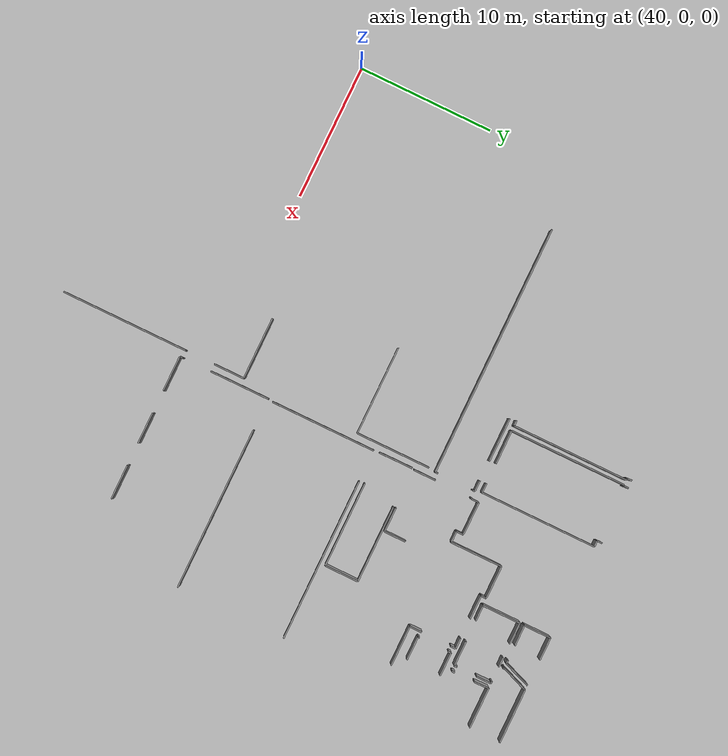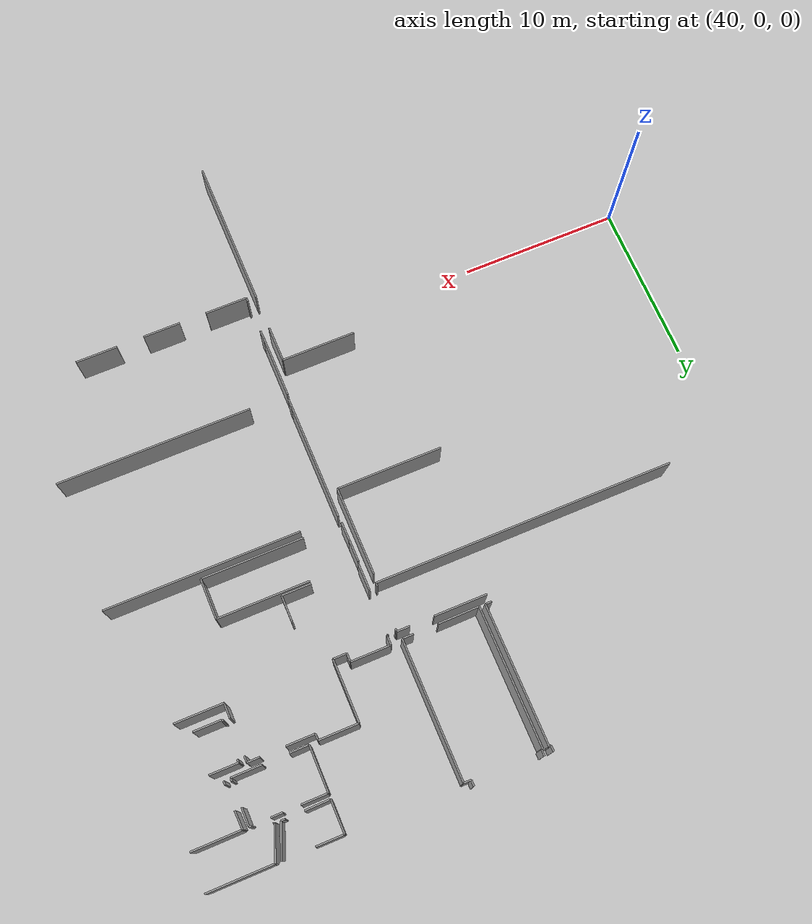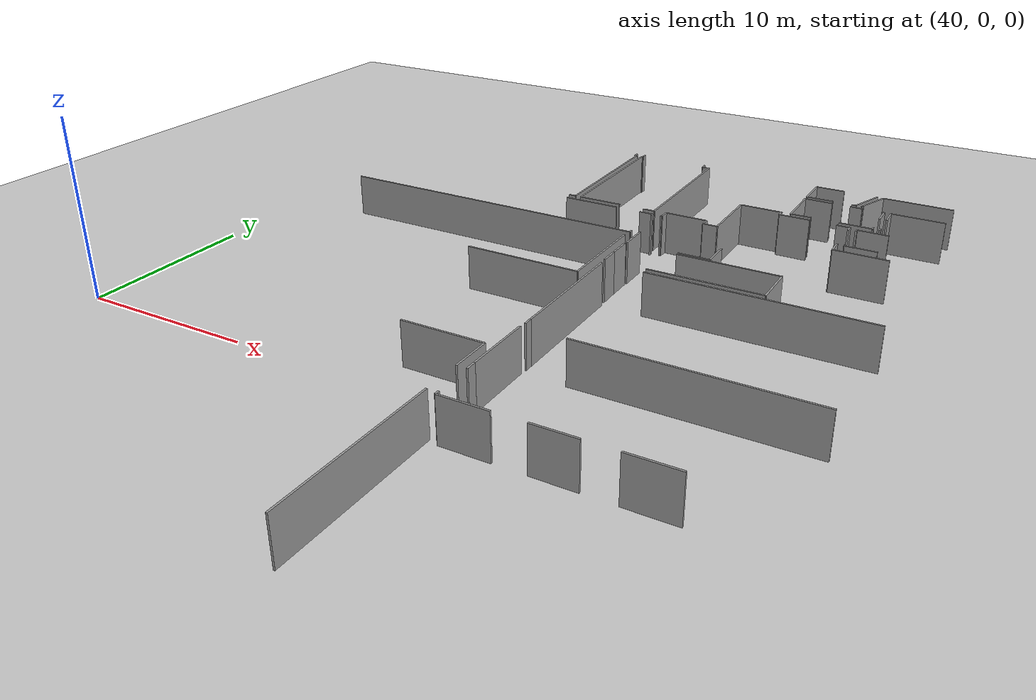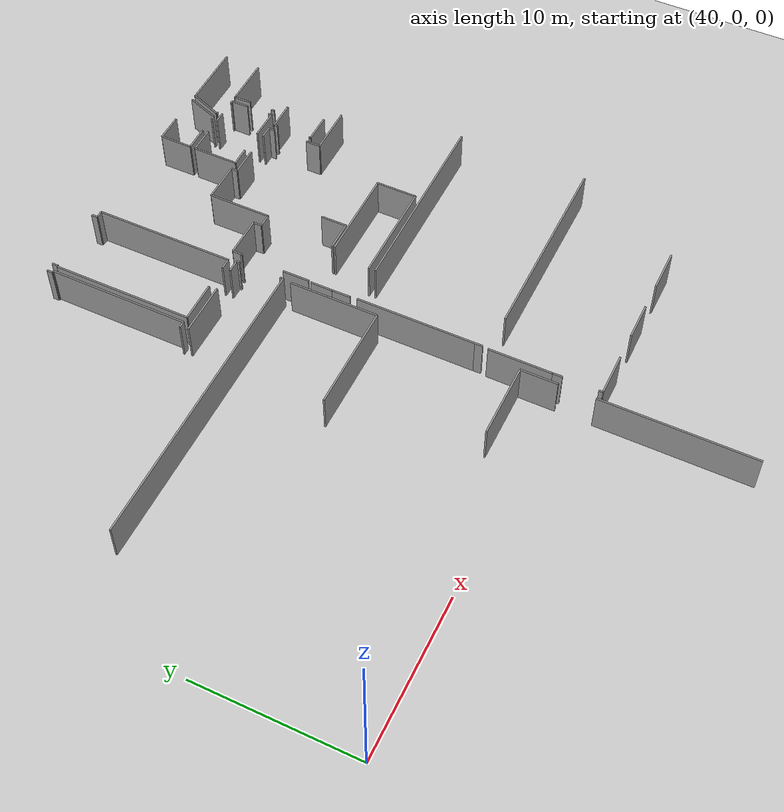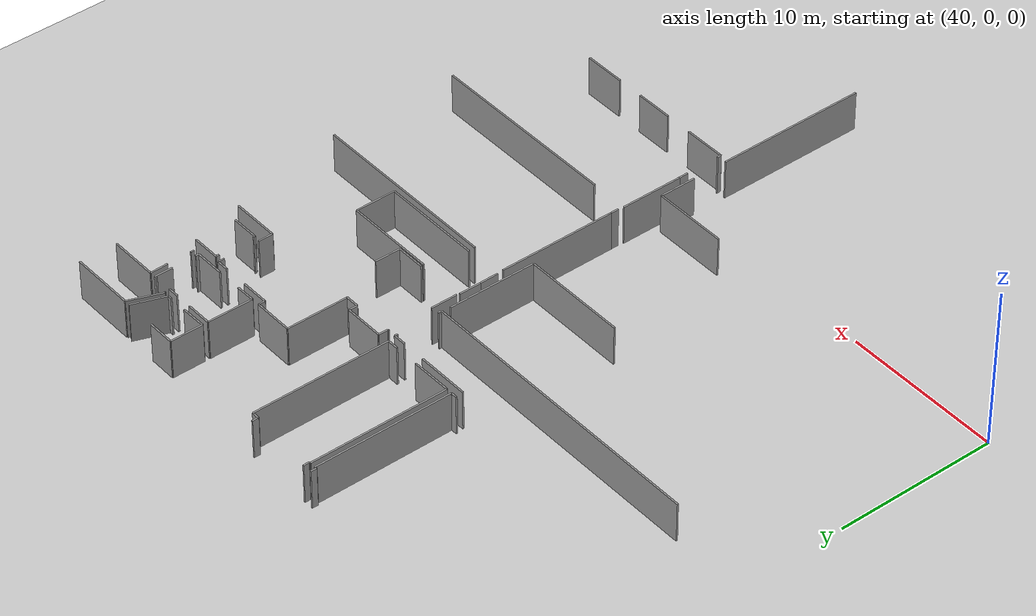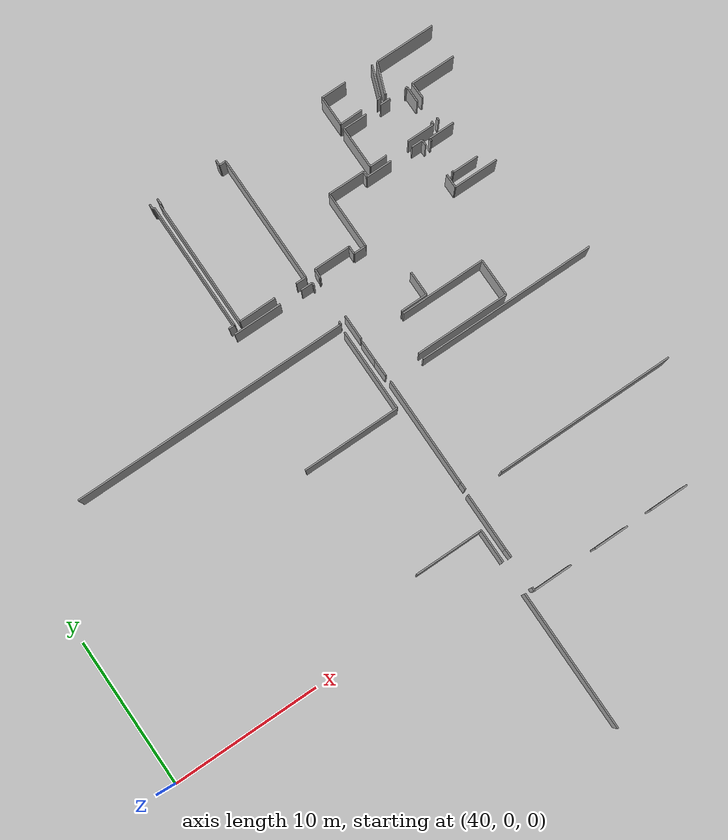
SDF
<sdf version="1.6">
 <world name="default">
  <model name="ground_plane">
   <static>1</static>
   <link name="link">
    <collision name="collision">
     <geometry><plane><normal>0 0 1</normal><size>100 100</size></plane></geometry>
     <surface><friction><ode><mu>100</mu><mu2>50</mu2></ode></friction></surface>
    </collision>
    <visual name="visual">
     <cast_shadows>0</cast_shadows>
     <geometry><plane><normal>0 0 1</normal><size>100 100</size></plane></geometry>
     <material>
      <script><uri>file://media/materials/scripts/gazebo.material</uri><name>Gazebo/Grey</name></script>
     </material>
    </visual>
   </link>
  </model>
  <model name="50010535_PLAN1">
   <static>1</static>
   <link name="Wall_379">
    <collision name="Wall_379_Collision">
     <geometry><box><size>4.61465156318 0.1 2.5</size></box></geometry>
     <pose>2.30732578159 0 1.25 0 0 0</pose>
    </collision>
    <visual name="Wall_379_Visual">
     <pose>2.30732578159 0 1.25 0 0 0</pose>
     <geometry><box><size>4.61465156318 0.1 2.5</size></box></geometry>
     <material>
      <script><uri>file://media/materials/scripts/gazebo.material</uri><name>Gazebo/Grey</name></script>
      <ambient>1 1 1 1</ambient>
     </material>
    </visual>
    <pose>161.19311576 -27.4449661061 0 0 0 0.0</pose>
   </link>
   <link name="Wall_380">
    <collision name="Wall_380_Collision">
     <geometry><box><size>2.27314600103 0.1 2.5</size></box></geometry>
     <pose>1.13657300051 0 1.25 0 0 0</pose>
    </collision>
    <visual name="Wall_380_Visual">
     <pose>1.13657300051 0 1.25 0 0 0</pose>
     <geometry><box><size>2.27314600103 0.1 2.5</size></box></geometry>
     <material>
      <script><uri>file://media/materials/scripts/gazebo.material</uri><name>Gazebo/Grey</name></script>
      <ambient>1 1 1 1</ambient>
     </material>
    </visual>
    <pose>165.807767323 -27.4449661061 0 0 0 -1.57079632679</pose>
   </link>
   <link name="Wall_381">
    <collision name="Wall_381_Collision">
     <geometry><box><size>9.42599569259 0.1 2.5</size></box></geometry>
     <pose>4.71299784629 0 1.25 0 0 0</pose>
    </collision>
    <visual name="Wall_381_Visual">
     <pose>4.71299784629 0 1.25 0 0 0</pose>
     <geometry><box><size>9.42599569259 0.1 2.5</size></box></geometry>
     <material>
      <script><uri>file://media/materials/scripts/gazebo.material</uri><name>Gazebo/Grey</name></script>
      <ambient>1 1 1 1</ambient>
     </material>
    </visual>
    <pose>165.807767323 -31.9254397947 0 0 0 -1.57079632679</pose>
   </link>
   <link name="Wall_399">
    <collision name="Wall_399_Collision">
     <geometry><box><size>5.53966569887 0.1 2.5</size></box></geometry>
     <pose>2.76983284944 0 1.25 0 0 0</pose>
    </collision>
    <visual name="Wall_399_Visual">
     <pose>2.76983284944 0 1.25 0 0 0</pose>
     <geometry><box><size>5.53966569887 0.1 2.5</size></box></geometry>
     <material>
      <script><uri>file://media/materials/scripts/gazebo.material</uri><name>Gazebo/Grey</name></script>
      <ambient>1 1 1 1</ambient>
     </material>
    </visual>
    <pose>165.820727686 -13.1301182315 0 0 0 -1.57079632679</pose>
   </link>
   <link name="Wall_400">
    <collision name="Wall_400_Collision">
     <geometry><box><size>6.58310197391 0.1 2.5</size></box></geometry>
     <pose>3.29155098696 0 1.25 0 0 0</pose>
    </collision>
    <visual name="Wall_400_Visual">
     <pose>3.29155098696 0 1.25 0 0 0</pose>
     <geometry><box><size>6.58310197391 0.1 2.5</size></box></geometry>
     <material>
      <script><uri>file://media/materials/scripts/gazebo.material</uri><name>Gazebo/Grey</name></script>
      <ambient>1 1 1 1</ambient>
     </material>
    </visual>
    <pose>165.820727686 -18.6697839304 0 0 0 3.14159265359</pose>
   </link>
   <link name="Wall_599">
    <collision name="Wall_599_Collision">
     <geometry><box><size>0.362127786637 0.1 2.5</size></box></geometry>
     <pose>0.181063893318 0 1.25 0 0 0</pose>
    </collision>
    <visual name="Wall_599_Visual">
     <pose>0.181063893318 0 1.25 0 0 0</pose>
     <geometry><box><size>0.362127786637 0.1 2.5</size></box></geometry>
     <material>
      <script><uri>file://media/materials/scripts/gazebo.material</uri><name>Gazebo/Grey</name></script>
      <ambient>1 1 1 1</ambient>
     </material>
    </visual>
    <pose>160.510282523 -0.0299867219812 0 0 0 -1.57079632679</pose>
   </link>
   <link name="Wall_600">
    <collision name="Wall_600_Collision">
     <geometry><box><size>0.118422139349 0.1 2.5</size></box></geometry>
     <pose>0.0592110696747 0 1.25 0 0 0</pose>
    </collision>
    <visual name="Wall_600_Visual">
     <pose>0.0592110696747 0 1.25 0 0 0</pose>
     <geometry><box><size>0.118422139349 0.1 2.5</size></box></geometry>
     <material>
      <script><uri>file://media/materials/scripts/gazebo.material</uri><name>Gazebo/Grey</name></script>
      <ambient>1 1 1 1</ambient>
     </material>
    </visual>
    <pose>160.510282523 -0.392114508618 0 0 0 0.0</pose>
   </link>
   <link name="Wall_601">
    <collision name="Wall_601_Collision">
     <geometry><box><size>8.67073689828 0.1 2.5</size></box></geometry>
     <pose>4.33536844914 0 1.25 0 0 0</pose>
    </collision>
    <visual name="Wall_601_Visual">
     <pose>4.33536844914 0 1.25 0 0 0</pose>
     <geometry><box><size>8.67073689828 0.1 2.5</size></box></geometry>
     <material>
      <script><uri>file://media/materials/scripts/gazebo.material</uri><name>Gazebo/Grey</name></script>
      <ambient>1 1 1 1</ambient>
     </material>
    </visual>
    <pose>160.628704663 -0.392114508618 0 0 0 -1.57079632679</pose>
   </link>
   <link name="Wall_602">
    <collision name="Wall_602_Collision">
     <geometry><box><size>0.408632618184 0.1 2.5</size></box></geometry>
     <pose>0.204316309092 0 1.25 0 0 0</pose>
    </collision>
    <visual name="Wall_602_Visual">
     <pose>0.204316309092 0 1.25 0 0 0</pose>
     <geometry><box><size>0.408632618184 0.1 2.5</size></box></geometry>
     <material>
      <script><uri>file://media/materials/scripts/gazebo.material</uri><name>Gazebo/Grey</name></script>
      <ambient>1 1 1 1</ambient>
     </material>
    </visual>
    <pose>160.628704663 -9.0628514069 0 0 0 3.14159265359</pose>
   </link>
   <link name="Wall_604">
    <collision name="Wall_604_Collision">
     <geometry><box><size>8.68064776402 0.1 2.5</size></box></geometry>
     <pose>4.34032388201 0 1.25 0 0 0</pose>
    </collision>
    <visual name="Wall_604_Visual">
     <pose>4.34032388201 0 1.25 0 0 0</pose>
     <geometry><box><size>8.68064776402 0.1 2.5</size></box></geometry>
     <material>
      <script><uri>file://media/materials/scripts/gazebo.material</uri><name>Gazebo/Grey</name></script>
      <ambient>1 1 1 1</ambient>
     </material>
    </visual>
    <pose>161.00582581 -9.07632001931 0 0 0 1.57079632679</pose>
   </link>
   <link name="Wall_605">
    <collision name="Wall_605_Collision">
     <geometry><box><size>0.0744585554278 0.1 2.5</size></box></geometry>
     <pose>0.0372292777139 0 1.25 0 0 0</pose>
    </collision>
    <visual name="Wall_605_Visual">
     <pose>0.0372292777139 0 1.25 0 0 0</pose>
     <geometry><box><size>0.0744585554278 0.1 2.5</size></box></geometry>
     <material>
      <script><uri>file://media/materials/scripts/gazebo.material</uri><name>Gazebo/Grey</name></script>
      <ambient>1 1 1 1</ambient>
     </material>
    </visual>
    <pose>161.00582581 -0.395672255294 0 0 0 0.0</pose>
   </link>
   <link name="Wall_606">
    <collision name="Wall_606_Collision">
     <geometry><box><size>0.38830263718 0.1 2.5</size></box></geometry>
     <pose>0.19415131859 0 1.25 0 0 0</pose>
    </collision>
    <visual name="Wall_606_Visual">
     <pose>0.19415131859 0 1.25 0 0 0</pose>
     <geometry><box><size>0.38830263718 0.1 2.5</size></box></geometry>
     <material>
      <script><uri>file://media/materials/scripts/gazebo.material</uri><name>Gazebo/Grey</name></script>
      <ambient>1 1 1 1</ambient>
     </material>
    </visual>
    <pose>161.080284366 -0.395672255294 0 0 0 1.57079632679</pose>
   </link>
   <link name="Wall_607">
    <collision name="Wall_607_Collision">
     <geometry><box><size>0.382966017166 0.1 2.5</size></box></geometry>
     <pose>0.191483008583 0 1.25 0 0 0</pose>
    </collision>
    <visual name="Wall_607_Visual">
     <pose>0.191483008583 0 1.25 0 0 0</pose>
     <geometry><box><size>0.382966017166 0.1 2.5</size></box></geometry>
     <material>
      <script><uri>file://media/materials/scripts/gazebo.material</uri><name>Gazebo/Grey</name></script>
      <ambient>1 1 1 1</ambient>
     </material>
    </visual>
    <pose>165.327471522 -0.00736961811401 0 0 0 -1.57079632679</pose>
   </link>
   <link name="Wall_608">
    <collision name="Wall_608_Collision">
     <geometry><box><size>0.450817328768 0.1 2.5</size></box></geometry>
     <pose>0.225408664384 0 1.25 0 0 0</pose>
    </collision>
    <visual name="Wall_608_Visual">
     <pose>0.225408664384 0 1.25 0 0 0</pose>
     <geometry><box><size>0.450817328768 0.1 2.5</size></box></geometry>
     <material>
      <script><uri>file://media/materials/scripts/gazebo.material</uri><name>Gazebo/Grey</name></script>
      <ambient>1 1 1 1</ambient>
     </material>
    </visual>
    <pose>165.327471522 -0.39033563528 0 0 0 0.0</pose>
   </link>
   <link name="Wall_609">
    <collision name="Wall_609_Collision">
     <geometry><box><size>8.66438377922 0.1 2.5</size></box></geometry>
     <pose>4.33219188961 0 1.25 0 0 0</pose>
    </collision>
    <visual name="Wall_609_Visual">
     <pose>4.33219188961 0 1.25 0 0 0</pose>
     <geometry><box><size>8.66438377922 0.1 2.5</size></box></geometry>
     <material>
      <script><uri>file://media/materials/scripts/gazebo.material</uri><name>Gazebo/Grey</name></script>
      <ambient>1 1 1 1</ambient>
     </material>
    </visual>
    <pose>165.778288851 -0.39033563528 0 0 0 -1.57079632679</pose>
   </link>
   <link name="Wall_610">
    <collision name="Wall_610_Collision">
     <geometry><box><size>0.703163217982 0.1 2.5</size></box></geometry>
     <pose>0.351581608991 0 1.25 0 0 0</pose>
    </collision>
    <visual name="Wall_610_Visual">
     <pose>0.351581608991 0 1.25 0 0 0</pose>
     <geometry><box><size>0.703163217982 0.1 2.5</size></box></geometry>
     <material>
      <script><uri>file://media/materials/scripts/gazebo.material</uri><name>Gazebo/Grey</name></script>
      <ambient>1 1 1 1</ambient>
     </material>
    </visual>
    <pose>165.778288851 -9.0547194145 0 0 0 3.14159265359</pose>
   </link>
   <link name="Wall_611">
    <collision name="Wall_611_Collision">
     <geometry><box><size>2.54464292917 0.1 2.5</size></box></geometry>
     <pose>1.27232146458 0 1.25 0 0 0</pose>
    </collision>
    <visual name="Wall_611_Visual">
     <pose>1.27232146458 0 1.25 0 0 0</pose>
     <geometry><box><size>2.54464292917 0.1 2.5</size></box></geometry>
     <material>
      <script><uri>file://media/materials/scripts/gazebo.material</uri><name>Gazebo/Grey</name></script>
      <ambient>1 1 1 1</ambient>
     </material>
    </visual>
    <pose>163.550377058 -9.0547194145 0 0 0 -3.13310389315</pose>
   </link>
   <link name="Wall_631">
    <collision name="Wall_631_Collision">
     <geometry><box><size>3.2939651722 0.1 2.5</size></box></geometry>
     <pose>1.6469825861 0 1.25 0 0 0</pose>
    </collision>
    <visual name="Wall_631_Visual">
     <pose>1.6469825861 0 1.25 0 0 0</pose>
     <geometry><box><size>3.2939651722 0.1 2.5</size></box></geometry>
     <material>
      <script><uri>file://media/materials/scripts/gazebo.material</uri><name>Gazebo/Grey</name></script>
      <ambient>1 1 1 1</ambient>
     </material>
    </visual>
    <pose>160.302916717 -9.54975445195 0 0 0 0.0</pose>
   </link>
   <link name="Wall_632">
    <collision name="Wall_632_Collision">
     <geometry><box><size>0.805829622053 0.1 2.5</size></box></geometry>
     <pose>0.402914811026 0 1.25 0 0 0</pose>
    </collision>
    <visual name="Wall_632_Visual">
     <pose>0.402914811026 0 1.25 0 0 0</pose>
     <geometry><box><size>0.805829622053 0.1 2.5</size></box></geometry>
     <material>
      <script><uri>file://media/materials/scripts/gazebo.material</uri><name>Gazebo/Grey</name></script>
      <ambient>1 1 1 1</ambient>
     </material>
    </visual>
    <pose>165.101300483 -9.54975445195 0 0 0 0.0</pose>
   </link>
   <link name="Wall_633">
    <collision name="Wall_633_Collision">
     <geometry><box><size>0.175600210924 0.1 2.5</size></box></geometry>
     <pose>0.0878001054618 0 1.25 0 0 0</pose>
    </collision>
    <visual name="Wall_633_Visual">
     <pose>0.0878001054618 0 1.25 0 0 0</pose>
     <geometry><box><size>0.175600210924 0.1 2.5</size></box></geometry>
     <material>
      <script><uri>file://media/materials/scripts/gazebo.material</uri><name>Gazebo/Grey</name></script>
      <ambient>1 1 1 1</ambient>
     </material>
    </visual>
    <pose>165.907130106 -9.54975445195 0 0 0 -1.57079632679</pose>
   </link>
   <link name="Wall_634">
    <collision name="Wall_634_Collision">
     <geometry><box><size>0.216768422457 0.1 2.5</size></box></geometry>
     <pose>0.108384211229 0 1.25 0 0 0</pose>
    </collision>
    <visual name="Wall_634_Visual">
     <pose>0.108384211229 0 1.25 0 0 0</pose>
     <geometry><box><size>0.216768422457 0.1 2.5</size></box></geometry>
     <material>
      <script><uri>file://media/materials/scripts/gazebo.material</uri><name>Gazebo/Grey</name></script>
      <ambient>1 1 1 1</ambient>
     </material>
    </visual>
    <pose>165.907130106 -12.3878198001 0 0 0 -1.57079632679</pose>
   </link>
   <link name="Wall_635">
    <collision name="Wall_635_Collision">
     <geometry><box><size>18.7236583801 0.1 2.5</size></box></geometry>
     <pose>9.36182919004 0 1.25 0 0 0</pose>
    </collision>
    <visual name="Wall_635_Visual">
     <pose>9.36182919004 0 1.25 0 0 0</pose>
     <geometry><box><size>18.7236583801 0.1 2.5</size></box></geometry>
     <material>
      <script><uri>file://media/materials/scripts/gazebo.material</uri><name>Gazebo/Grey</name></script>
      <ambient>1 1 1 1</ambient>
     </material>
    </visual>
    <pose>165.907130106 -12.6045882226 0 0 0 3.14159265359</pose>
   </link>
   <link name="Wall_642">
    <collision name="Wall_642_Collision">
     <geometry><box><size>2.01978361276 0.1 2.5</size></box></geometry>
     <pose>1.00989180638 0 1.25 0 0 0</pose>
    </collision>
    <visual name="Wall_642_Visual">
     <pose>1.00989180638 0 1.25 0 0 0</pose>
     <geometry><box><size>2.01978361276 0.1 2.5</size></box></geometry>
     <material>
      <script><uri>file://media/materials/scripts/gazebo.material</uri><name>Gazebo/Grey</name></script>
      <ambient>1 1 1 1</ambient>
     </material>
    </visual>
    <pose>172.821356645 -2.40910274899 0 0 0 1.57079632679</pose>
   </link>
   <link name="Wall_643">
    <collision name="Wall_643_Collision">
     <geometry><box><size>1.69958641195 0.1 2.5</size></box></geometry>
     <pose>0.849793205974 0 1.25 0 0 0</pose>
    </collision>
    <visual name="Wall_643_Visual">
     <pose>0.849793205974 0 1.25 0 0 0</pose>
     <geometry><box><size>1.69958641195 0.1 2.5</size></box></geometry>
     <material>
      <script><uri>file://media/materials/scripts/gazebo.material</uri><name>Gazebo/Grey</name></script>
      <ambient>1 1 1 1</ambient>
     </material>
    </visual>
    <pose>172.821356645 -0.38931913623 0 0 0 0.0</pose>
   </link>
   <link name="Wall_644">
    <collision name="Wall_644_Collision">
     <geometry><box><size>2.12868633905 0.1 2.5</size></box></geometry>
     <pose>1.06434316953 0 1.25 0 0 0</pose>
    </collision>
    <visual name="Wall_644_Visual">
     <pose>1.06434316953 0 1.25 0 0 0</pose>
     <geometry><box><size>2.12868633905 0.1 2.5</size></box></geometry>
     <material>
      <script><uri>file://media/materials/scripts/gazebo.material</uri><name>Gazebo/Grey</name></script>
      <ambient>1 1 1 1</ambient>
     </material>
    </visual>
    <pose>176.498287834 -0.38931913623 0 0 0 -1.92724756124</pose>
   </link>
   <link name="Wall_645">
    <collision name="Wall_645_Collision">
     <geometry><box><size>0.245738645388 0.1 2.5</size></box></geometry>
     <pose>0.122869322694 0 1.25 0 0 0</pose>
    </collision>
    <visual name="Wall_645_Visual">
     <pose>0.122869322694 0 1.25 0 0 0</pose>
     <geometry><box><size>0.245738645388 0.1 2.5</size></box></geometry>
     <material>
      <script><uri>file://media/materials/scripts/gazebo.material</uri><name>Gazebo/Grey</name></script>
      <ambient>1 1 1 1</ambient>
     </material>
    </visual>
    <pose>175.755481153 -2.38419852226 0 0 0 3.14159265359</pose>
   </link>
   <link name="Wall_646">
    <collision name="Wall_646_Collision">
     <geometry><box><size>1.55264791721 0.1 2.5</size></box></geometry>
     <pose>0.776323958603 0 1.25 0 0 0</pose>
    </collision>
    <visual name="Wall_646_Visual">
     <pose>0.776323958603 0 1.25 0 0 0</pose>
     <geometry><box><size>1.55264791721 0.1 2.5</size></box></geometry>
     <material>
      <script><uri>file://media/materials/scripts/gazebo.material</uri><name>Gazebo/Grey</name></script>
      <ambient>1 1 1 1</ambient>
     </material>
    </visual>
    <pose>174.373804819 -2.38419852226 0 0 0 -3.12555212408</pose>
   </link>
   <link name="Wall_647">
    <collision name="Wall_647_Collision">
     <geometry><box><size>4.05583121033 0.1 2.5</size></box></geometry>
     <pose>2.02791560517 0 1.25 0 0 0</pose>
    </collision>
    <visual name="Wall_647_Visual">
     <pose>2.02791560517 0 1.25 0 0 0</pose>
     <geometry><box><size>4.05583121033 0.1 2.5</size></box></geometry>
     <material>
      <script><uri>file://media/materials/scripts/gazebo.material</uri><name>Gazebo/Grey</name></script>
      <ambient>1 1 1 1</ambient>
     </material>
    </visual>
    <pose>176.862702744 -0.41320686391 0 0 0 0.0</pose>
   </link>
   <link name="Wall_650">
    <collision name="Wall_650_Collision">
     <geometry><box><size>0.103174653596 0.1 2.5</size></box></geometry>
     <pose>0.0515873267981 0 1.25 0 0 0</pose>
    </collision>
    <visual name="Wall_650_Visual">
     <pose>0.0515873267981 0 1.25 0 0 0</pose>
     <geometry><box><size>0.103174653596 0.1 2.5</size></box></geometry>
     <material>
      <script><uri>file://media/materials/scripts/gazebo.material</uri><name>Gazebo/Grey</name></script>
      <ambient>1 1 1 1</ambient>
     </material>
    </visual>
    <pose>176.193083995 -2.40274962993 0 0 0 3.14159265359</pose>
   </link>
   <link name="Wall_651">
    <collision name="Wall_651_Collision">
     <geometry><box><size>2.13435940306 0.1 2.5</size></box></geometry>
     <pose>1.06717970153 0 1.25 0 0 0</pose>
    </collision>
    <visual name="Wall_651_Visual">
     <pose>1.06717970153 0 1.25 0 0 0</pose>
     <geometry><box><size>2.13435940306 0.1 2.5</size></box></geometry>
     <material>
      <script><uri>file://media/materials/scripts/gazebo.material</uri><name>Gazebo/Grey</name></script>
      <ambient>1 1 1 1</ambient>
     </material>
    </visual>
    <pose>176.089909341 -2.40274962993 0 0 0 1.20030575555</pose>
   </link>
   <link name="Wall_652">
    <collision name="Wall_652_Collision">
     <geometry><box><size>3.04797240205 0.1 2.5</size></box></geometry>
     <pose>1.52398620103 0 1.25 0 0 0</pose>
    </collision>
    <visual name="Wall_652_Visual">
     <pose>1.52398620103 0 1.25 0 0 0</pose>
     <geometry><box><size>3.04797240205 0.1 2.5</size></box></geometry>
     <material>
      <script><uri>file://media/materials/scripts/gazebo.material</uri><name>Gazebo/Grey</name></script>
      <ambient>1 1 1 1</ambient>
     </material>
    </visual>
    <pose>177.842099579 -2.74480156033 0 0 0 0.0</pose>
   </link>
   <link name="Wall_655">
    <collision name="Wall_655_Collision">
     <geometry><box><size>0.228712286297 0.1 2.5</size></box></geometry>
     <pose>0.114356143148 0 1.25 0 0 0</pose>
    </collision>
    <visual name="Wall_655_Visual">
     <pose>0.114356143148 0 1.25 0 0 0</pose>
     <geometry><box><size>0.228712286297 0.1 2.5</size></box></geometry>
     <material>
      <script><uri>file://media/materials/scripts/gazebo.material</uri><name>Gazebo/Grey</name></script>
      <ambient>1 1 1 1</ambient>
     </material>
    </visual>
    <pose>177.874881673 -5.57346429229 0 0 0 1.57079632679</pose>
   </link>
   <link name="Wall_656">
    <collision name="Wall_656_Collision">
     <geometry><box><size>1.1018644867 0.1 2.5</size></box></geometry>
     <pose>0.550932243351 0 1.25 0 0 0</pose>
    </collision>
    <visual name="Wall_656_Visual">
     <pose>0.550932243351 0 1.25 0 0 0</pose>
     <geometry><box><size>1.1018644867 0.1 2.5</size></box></geometry>
     <material>
      <script><uri>file://media/materials/scripts/gazebo.material</uri><name>Gazebo/Grey</name></script>
      <ambient>1 1 1 1</ambient>
     </material>
    </visual>
    <pose>177.874881673 -3.84617828123 0 0 0 1.60055219321</pose>
   </link>
   <link name="Wall_657">
    <collision name="Wall_657_Collision">
     <geometry><box><size>2.84111484533 0.1 2.5</size></box></geometry>
     <pose>1.42055742267 0 1.25 0 0 0</pose>
    </collision>
    <visual name="Wall_657_Visual">
     <pose>1.42055742267 0 1.25 0 0 0</pose>
     <geometry><box><size>2.84111484533 0.1 2.5</size></box></geometry>
     <material>
      <script><uri>file://media/materials/scripts/gazebo.material</uri><name>Gazebo/Grey</name></script>
      <ambient>1 1 1 1</ambient>
     </material>
    </visual>
    <pose>172.816782399 -5.59608139616 0 0 0 1.57079632679</pose>
   </link>
   <link name="Wall_658">
    <collision name="Wall_658_Collision">
     <geometry><box><size>1.61953711175 0.1 2.5</size></box></geometry>
     <pose>0.809768555873 0 1.25 0 0 0</pose>
    </collision>
    <visual name="Wall_658_Visual">
     <pose>0.809768555873 0 1.25 0 0 0</pose>
     <geometry><box><size>1.61953711175 0.1 2.5</size></box></geometry>
     <material>
      <script><uri>file://media/materials/scripts/gazebo.material</uri><name>Gazebo/Grey</name></script>
      <ambient>1 1 1 1</ambient>
     </material>
    </visual>
    <pose>172.816782399 -2.75496655083 0 0 0 0.0</pose>
   </link>
   <link name="Wall_659">
    <collision name="Wall_659_Collision">
     <geometry><box><size>0.698080722731 0.1 2.5</size></box></geometry>
     <pose>0.349040361365 0 1.25 0 0 0</pose>
    </collision>
    <visual name="Wall_659_Visual">
     <pose>0.349040361365 0 1.25 0 0 0</pose>
     <geometry><box><size>0.698080722731 0.1 2.5</size></box></geometry>
     <material>
      <script><uri>file://media/materials/scripts/gazebo.material</uri><name>Gazebo/Grey</name></script>
      <ambient>1 1 1 1</ambient>
     </material>
    </visual>
    <pose>175.499577518 -2.75496655083 0 0 0 0.0</pose>
   </link>
   <link name="Wall_660">
    <collision name="Wall_660_Collision">
     <geometry><box><size>0.143580490842 0.1 2.5</size></box></geometry>
     <pose>0.071790245421 0 1.25 0 0 0</pose>
    </collision>
    <visual name="Wall_660_Visual">
     <pose>0.071790245421 0 1.25 0 0 0</pose>
     <geometry><box><size>0.143580490842 0.1 2.5</size></box></geometry>
     <material>
      <script><uri>file://media/materials/scripts/gazebo.material</uri><name>Gazebo/Grey</name></script>
      <ambient>1 1 1 1</ambient>
     </material>
    </visual>
    <pose>177.324193313 -2.75496655083 0 0 0 0.0</pose>
   </link>
   <link name="Wall_661">
    <collision name="Wall_661_Collision">
     <geometry><box><size>1.11611595713 0.1 2.5</size></box></geometry>
     <pose>0.558057978565 0 1.25 0 0 0</pose>
    </collision>
    <visual name="Wall_661_Visual">
     <pose>0.558057978565 0 1.25 0 0 0</pose>
     <geometry><box><size>1.11611595713 0.1 2.5</size></box></geometry>
     <material>
      <script><uri>file://media/materials/scripts/gazebo.material</uri><name>Gazebo/Grey</name></script>
      <ambient>1 1 1 1</ambient>
     </material>
    </visual>
    <pose>177.467773804 -2.75496655083 0 0 0 -1.57079632679</pose>
   </link>
   <link name="Wall_662">
    <collision name="Wall_662_Collision">
     <geometry><box><size>0.21905554532 0.1 2.5</size></box></geometry>
     <pose>0.10952777266 0 1.25 0 0 0</pose>
    </collision>
    <visual name="Wall_662_Visual">
     <pose>0.10952777266 0 1.25 0 0 0</pose>
     <geometry><box><size>0.21905554532 0.1 2.5</size></box></geometry>
     <material>
      <script><uri>file://media/materials/scripts/gazebo.material</uri><name>Gazebo/Grey</name></script>
      <ambient>1 1 1 1</ambient>
     </material>
    </visual>
    <pose>177.467773804 -5.36203248985 0 0 0 -1.57079632679</pose>
   </link>
   <link name="Wall_663">
    <collision name="Wall_663_Collision">
     <geometry><box><size>1.86527575713 0.1 2.5</size></box></geometry>
     <pose>0.932637878566 0 1.25 0 0 0</pose>
    </collision>
    <visual name="Wall_663_Visual">
     <pose>0.932637878566 0 1.25 0 0 0</pose>
     <geometry><box><size>1.86527575713 0.1 2.5</size></box></geometry>
     <material>
      <script><uri>file://media/materials/scripts/gazebo.material</uri><name>Gazebo/Grey</name></script>
      <ambient>1 1 1 1</ambient>
     </material>
    </visual>
    <pose>177.467773804 -5.58108803517 0 0 0 3.14159265359</pose>
   </link>
   <link name="Wall_664">
    <collision name="Wall_664_Collision">
     <geometry><box><size>1.19016070817 0.1 2.5</size></box></geometry>
     <pose>0.595080354087 0 1.25 0 0 0</pose>
    </collision>
    <visual name="Wall_664_Visual">
     <pose>0.595080354087 0 1.25 0 0 0</pose>
     <geometry><box><size>1.19016070817 0.1 2.5</size></box></geometry>
     <material>
      <script><uri>file://media/materials/scripts/gazebo.material</uri><name>Gazebo/Grey</name></script>
      <ambient>1 1 1 1</ambient>
     </material>
    </visual>
    <pose>174.006848662 -5.58108803517 0 0 0 -3.12899455864</pose>
   </link>
   <link name="Wall_665">
    <collision name="Wall_665_Collision">
     <geometry><box><size>1.7623552283 0.1 2.5</size></box></geometry>
     <pose>0.88117761415 0 1.25 0 0 0</pose>
    </collision>
    <visual name="Wall_665_Visual">
     <pose>0.88117761415 0 1.25 0 0 0</pose>
     <geometry><box><size>1.7623552283 0.1 2.5</size></box></geometry>
     <material>
      <script><uri>file://media/materials/scripts/gazebo.material</uri><name>Gazebo/Grey</name></script>
      <ambient>1 1 1 1</ambient>
     </material>
    </visual>
    <pose>176.762831712 -6.16989511 0 0 0 0.0</pose>
   </link>
   <link name="Wall_667">
    <collision name="Wall_667_Collision">
     <geometry><box><size>1.75905160639 0.1 2.5</size></box></geometry>
     <pose>0.879525803193 0 1.25 0 0 0</pose>
    </collision>
    <visual name="Wall_667_Visual">
     <pose>0.879525803193 0 1.25 0 0 0</pose>
     <geometry><box><size>1.75905160639 0.1 2.5</size></box></geometry>
     <material>
      <script><uri>file://media/materials/scripts/gazebo.material</uri><name>Gazebo/Grey</name></script>
      <ambient>1 1 1 1</ambient>
     </material>
    </visual>
    <pose>178.525186941 -8.72029122698 0 0 0 3.14159265359</pose>
   </link>
   <link name="Wall_668">
    <collision name="Wall_668_Collision">
     <geometry><box><size>0.114610267911 0.1 2.5</size></box></geometry>
     <pose>0.0573051339555 0 1.25 0 0 0</pose>
    </collision>
    <visual name="Wall_668_Visual">
     <pose>0.0573051339555 0 1.25 0 0 0</pose>
     <geometry><box><size>0.114610267911 0.1 2.5</size></box></geometry>
     <material>
      <script><uri>file://media/materials/scripts/gazebo.material</uri><name>Gazebo/Grey</name></script>
      <ambient>1 1 1 1</ambient>
     </material>
    </visual>
    <pose>176.766135334 -8.72029122698 0 0 0 1.57079632679</pose>
   </link>
   <link name="Wall_669">
    <collision name="Wall_669_Collision">
     <geometry><box><size>0.207138027709 0.1 2.5</size></box></geometry>
     <pose>0.103569013855 0 1.25 0 0 0</pose>
    </collision>
    <visual name="Wall_669_Visual">
     <pose>0.103569013855 0 1.25 0 0 0</pose>
     <geometry><box><size>0.207138027709 0.1 2.5</size></box></geometry>
     <material>
      <script><uri>file://media/materials/scripts/gazebo.material</uri><name>Gazebo/Grey</name></script>
      <ambient>1 1 1 1</ambient>
     </material>
    </visual>
    <pose>176.766135334 -6.37700679148 0 0 0 1.58674589444</pose>
   </link>
   <link name="Wall_674">
    <collision name="Wall_674_Collision">
     <geometry><box><size>1.37049484444 0.1 2.5</size></box></geometry>
     <pose>0.685247422222 0 1.25 0 0 0</pose>
    </collision>
    <visual name="Wall_674_Visual">
     <pose>0.685247422222 0 1.25 0 0 0</pose>
     <geometry><box><size>1.37049484444 0.1 2.5</size></box></geometry>
     <material>
      <script><uri>file://media/materials/scripts/gazebo.material</uri><name>Gazebo/Grey</name></script>
      <ambient>1 1 1 1</ambient>
     </material>
    </visual>
    <pose>166.354897937 -15.5371879824 0 0 0 1.57079632679</pose>
   </link>
   <link name="Wall_675">
    <collision name="Wall_675_Collision">
     <geometry><box><size>5.73102164508 0.1 2.5</size></box></geometry>
     <pose>2.86551082254 0 1.25 0 0 0</pose>
    </collision>
    <visual name="Wall_675_Visual">
     <pose>2.86551082254 0 1.25 0 0 0</pose>
     <geometry><box><size>5.73102164508 0.1 2.5</size></box></geometry>
     <material>
      <script><uri>file://media/materials/scripts/gazebo.material</uri><name>Gazebo/Grey</name></script>
      <ambient>1 1 1 1</ambient>
     </material>
    </visual>
    <pose>169.354078385 -14.166693138 0 0 0 0.0</pose>
   </link>
   <link name="Wall_676">
    <collision name="Wall_676_Collision">
     <geometry><box><size>2.52066351976 0.1 2.5</size></box></geometry>
     <pose>1.26033175988 0 1.25 0 0 0</pose>
    </collision>
    <visual name="Wall_676_Visual">
     <pose>1.26033175988 0 1.25 0 0 0</pose>
     <geometry><box><size>2.52066351976 0.1 2.5</size></box></geometry>
     <material>
      <script><uri>file://media/materials/scripts/gazebo.material</uri><name>Gazebo/Grey</name></script>
      <ambient>1 1 1 1</ambient>
     </material>
    </visual>
    <pose>175.08510003 -14.166693138 0 0 0 -1.57079632679</pose>
   </link>
   <link name="Wall_677">
    <collision name="Wall_677_Collision">
     <geometry><box><size>6.34473294664 0.1 2.5</size></box></geometry>
     <pose>3.17236647332 0 1.25 0 0 0</pose>
    </collision>
    <visual name="Wall_677_Visual">
     <pose>3.17236647332 0 1.25 0 0 0</pose>
     <geometry><box><size>6.34473294664 0.1 2.5</size></box></geometry>
     <material>
      <script><uri>file://media/materials/scripts/gazebo.material</uri><name>Gazebo/Grey</name></script>
      <ambient>1 1 1 1</ambient>
     </material>
    </visual>
    <pose>175.08510003 -16.6873566578 0 0 0 3.14159265359</pose>
   </link>
   <link name="Wall_678">
    <collision name="Wall_678_Collision">
     <geometry><box><size>1.15027313348 0.1 2.5</size></box></geometry>
     <pose>0.575136566738 0 1.25 0 0 0</pose>
    </collision>
    <visual name="Wall_678_Visual">
     <pose>0.575136566738 0 1.25 0 0 0</pose>
     <geometry><box><size>1.15027313348 0.1 2.5</size></box></geometry>
     <material>
      <script><uri>file://media/materials/scripts/gazebo.material</uri><name>Gazebo/Grey</name></script>
      <ambient>1 1 1 1</ambient>
     </material>
    </visual>
    <pose>166.370399548 -16.6873566578 0 0 0 1.58427319531</pose>
   </link>
   <link name="Wall_679">
    <collision name="Wall_679_Collision">
     <geometry><box><size>2.47060094153 0.1 2.5</size></box></geometry>
     <pose>1.23530047077 0 1.25 0 0 0</pose>
    </collision>
    <visual name="Wall_679_Visual">
     <pose>1.23530047077 0 1.25 0 0 0</pose>
     <geometry><box><size>2.47060094153 0.1 2.5</size></box></geometry>
     <material>
      <script><uri>file://media/materials/scripts/gazebo.material</uri><name>Gazebo/Grey</name></script>
      <ambient>1 1 1 1</ambient>
     </material>
    </visual>
    <pose>166.508135169 -8.9637427495 0 0 0 0.0</pose>
   </link>
   <link name="Wall_680">
    <collision name="Wall_680_Collision">
     <geometry><box><size>0.526292383246 0.1 2.5</size></box></geometry>
     <pose>0.263146191623 0 1.25 0 0 0</pose>
    </collision>
    <visual name="Wall_680_Visual">
     <pose>0.263146191623 0 1.25 0 0 0</pose>
     <geometry><box><size>0.526292383246 0.1 2.5</size></box></geometry>
     <material>
      <script><uri>file://media/materials/scripts/gazebo.material</uri><name>Gazebo/Grey</name></script>
      <ambient>1 1 1 1</ambient>
     </material>
    </visual>
    <pose>168.97873611 -8.9637427495 0 0 0 -1.57079632679</pose>
   </link>
   <link name="Wall_681">
    <collision name="Wall_681_Collision">
     <geometry><box><size>0.840644714523 0.1 2.5</size></box></geometry>
     <pose>0.420322357261 0 1.25 0 0 0</pose>
    </collision>
    <visual name="Wall_681_Visual">
     <pose>0.420322357261 0 1.25 0 0 0</pose>
     <geometry><box><size>0.840644714523 0.1 2.5</size></box></geometry>
     <material>
      <script><uri>file://media/materials/scripts/gazebo.material</uri><name>Gazebo/Grey</name></script>
      <ambient>1 1 1 1</ambient>
     </material>
    </visual>
    <pose>168.97873611 -9.49003513275 0 0 0 0.0</pose>
   </link>
   <link name="Wall_682">
    <collision name="Wall_682_Collision">
     <geometry><box><size>3.87870625083 0.1 2.5</size></box></geometry>
     <pose>1.93935312542 0 1.25 0 0 0</pose>
    </collision>
    <visual name="Wall_682_Visual">
     <pose>1.93935312542 0 1.25 0 0 0</pose>
     <geometry><box><size>3.87870625083 0.1 2.5</size></box></geometry>
     <material>
      <script><uri>file://media/materials/scripts/gazebo.material</uri><name>Gazebo/Grey</name></script>
      <ambient>1 1 1 1</ambient>
     </material>
    </visual>
    <pose>169.819380825 -9.49003513275 0 0 0 1.57079632679</pose>
   </link>
   <link name="Wall_683">
    <collision name="Wall_683_Collision">
     <geometry><box><size>2.46196069961 0.1 2.5</size></box></geometry>
     <pose>1.2309803498 0 1.25 0 0 0</pose>
    </collision>
    <visual name="Wall_683_Visual">
     <pose>1.2309803498 0 1.25 0 0 0</pose>
     <geometry><box><size>2.46196069961 0.1 2.5</size></box></geometry>
     <material>
      <script><uri>file://media/materials/scripts/gazebo.material</uri><name>Gazebo/Grey</name></script>
      <ambient>1 1 1 1</ambient>
     </material>
    </visual>
    <pose>169.819380825 -5.61132888191 0 0 0 0.0</pose>
   </link>
   <link name="Wall_684">
    <collision name="Wall_684_Collision">
     <geometry><box><size>0.397197003869 0.1 2.5</size></box></geometry>
     <pose>0.198598501935 0 1.25 0 0 0</pose>
    </collision>
    <visual name="Wall_684_Visual">
     <pose>0.198598501935 0 1.25 0 0 0</pose>
     <geometry><box><size>0.397197003869 0.1 2.5</size></box></geometry>
     <material>
      <script><uri>file://media/materials/scripts/gazebo.material</uri><name>Gazebo/Grey</name></script>
      <ambient>1 1 1 1</ambient>
     </material>
    </visual>
    <pose>172.281341525 -5.61132888191 0 0 0 -1.57079632679</pose>
   </link>
   <link name="Wall_685">
    <collision name="Wall_685_Collision">
     <geometry><box><size>1.76997897118 0.1 2.5</size></box></geometry>
     <pose>0.884989485588 0 1.25 0 0 0</pose>
    </collision>
    <visual name="Wall_685_Visual">
     <pose>0.884989485588 0 1.25 0 0 0</pose>
     <geometry><box><size>1.76997897118 0.1 2.5</size></box></geometry>
     <material>
      <script><uri>file://media/materials/scripts/gazebo.material</uri><name>Gazebo/Grey</name></script>
      <ambient>1 1 1 1</ambient>
     </material>
    </visual>
    <pose>172.281341525 -6.00852588578 0 0 0 0.0</pose>
   </link>
   <link name="Wall_686">
    <collision name="Wall_686_Collision">
     <geometry><box><size>0.764915535282 0.1 2.5</size></box></geometry>
     <pose>0.382457767641 0 1.25 0 0 0</pose>
    </collision>
    <visual name="Wall_686_Visual">
     <pose>0.382457767641 0 1.25 0 0 0</pose>
     <geometry><box><size>0.764915535282 0.1 2.5</size></box></geometry>
     <material>
      <script><uri>file://media/materials/scripts/gazebo.material</uri><name>Gazebo/Grey</name></script>
      <ambient>1 1 1 1</ambient>
     </material>
    </visual>
    <pose>175.580135067 -6.00852588578 0 0 0 0.0</pose>
   </link>
   <link name="Wall_687">
    <collision name="Wall_687_Collision">
     <geometry><box><size>0.392876882906 0.1 2.5</size></box></geometry>
     <pose>0.196438441453 0 1.25 0 0 0</pose>
    </collision>
    <visual name="Wall_687_Visual">
     <pose>0.196438441453 0 1.25 0 0 0</pose>
     <geometry><box><size>0.392876882906 0.1 2.5</size></box></geometry>
     <material>
      <script><uri>file://media/materials/scripts/gazebo.material</uri><name>Gazebo/Grey</name></script>
      <ambient>1 1 1 1</ambient>
     </material>
    </visual>
    <pose>176.345050603 -6.00852588578 0 0 0 -1.57079632679</pose>
   </link>
   <link name="Wall_688">
    <collision name="Wall_688_Collision">
     <geometry><box><size>0.920948139489 0.1 2.5</size></box></geometry>
     <pose>0.460474069745 0 1.25 0 0 0</pose>
    </collision>
    <visual name="Wall_688_Visual">
     <pose>0.460474069745 0 1.25 0 0 0</pose>
     <geometry><box><size>0.920948139489 0.1 2.5</size></box></geometry>
     <material>
      <script><uri>file://media/materials/scripts/gazebo.material</uri><name>Gazebo/Grey</name></script>
      <ambient>1 1 1 1</ambient>
     </material>
    </visual>
    <pose>176.345050603 -8.62499444102 0 0 0 -1.57079632679</pose>
   </link>
   <link name="Wall_689">
    <collision name="Wall_689_Collision">
     <geometry><box><size>3.01036193719 0.1 2.5</size></box></geometry>
     <pose>1.5051809686 0 1.25 0 0 0</pose>
    </collision>
    <visual name="Wall_689_Visual">
     <pose>1.5051809686 0 1.25 0 0 0</pose>
     <geometry><box><size>3.01036193719 0.1 2.5</size></box></geometry>
     <material>
      <script><uri>file://media/materials/scripts/gazebo.material</uri><name>Gazebo/Grey</name></script>
      <ambient>1 1 1 1</ambient>
     </material>
    </visual>
    <pose>176.345050603 -9.54594258051 0 0 0 0.0</pose>
   </link>
   <link name="Wall_694">
    <collision name="Wall_694_Collision">
     <geometry><box><size>1.62843147843 0.1 2.5</size></box></geometry>
     <pose>0.814215739217 0 1.25 0 0 0</pose>
    </collision>
    <visual name="Wall_694_Visual">
     <pose>0.814215739217 0 1.25 0 0 0</pose>
     <geometry><box><size>1.62843147843 0.1 2.5</size></box></geometry>
     <material>
      <script><uri>file://media/materials/scripts/gazebo.material</uri><name>Gazebo/Grey</name></script>
      <ambient>1 1 1 1</ambient>
     </material>
    </visual>
    <pose>171.160397197 -12.3702851915 0 0 0 -1.57079632679</pose>
   </link>
   <link name="Wall_695">
    <collision name="Wall_695_Collision">
     <geometry><box><size>1.81318018081 0.1 2.5</size></box></geometry>
     <pose>0.906590090405 0 1.25 0 0 0</pose>
    </collision>
    <visual name="Wall_695_Visual">
     <pose>0.906590090405 0 1.25 0 0 0</pose>
     <geometry><box><size>1.81318018081 0.1 2.5</size></box></geometry>
     <material>
      <script><uri>file://media/materials/scripts/gazebo.material</uri><name>Gazebo/Grey</name></script>
      <ambient>1 1 1 1</ambient>
     </material>
    </visual>
    <pose>171.160397197 -13.9987166699 0 0 0 3.14159265359</pose>
   </link>
   <link name="Wall_696">
    <collision name="Wall_696_Collision">
     <geometry><box><size>1.66146769757 0.1 2.5</size></box></geometry>
     <pose>0.830733848783 0 1.25 0 0 0</pose>
    </collision>
    <visual name="Wall_696_Visual">
     <pose>0.830733848783 0 1.25 0 0 0</pose>
     <geometry><box><size>1.66146769757 0.1 2.5</size></box></geometry>
     <material>
      <script><uri>file://media/materials/scripts/gazebo.material</uri><name>Gazebo/Grey</name></script>
      <ambient>1 1 1 1</ambient>
     </material>
    </visual>
    <pose>166.406993513 -13.9987166699 0 0 0 1.57079632679</pose>
   </link>
   <link name="Wall_697">
    <collision name="Wall_697_Collision">
     <geometry><box><size>0.0790328011537 0.1 2.5</size></box></geometry>
     <pose>0.0395164005769 0 1.25 0 0 0</pose>
    </collision>
    <visual name="Wall_697_Visual">
     <pose>0.0395164005769 0 1.25 0 0 0</pose>
     <geometry><box><size>0.0790328011537 0.1 2.5</size></box></geometry>
     <material>
      <script><uri>file://media/materials/scripts/gazebo.material</uri><name>Gazebo/Grey</name></script>
      <ambient>1 1 1 1</ambient>
     </material>
    </visual>
    <pose>166.406993513 -9.55610757101 0 0 0 0.0</pose>
   </link>
   <link name="Wall_698">
    <collision name="Wall_698_Collision">
     <geometry><box><size>0.592777262723 0.1 2.5</size></box></geometry>
     <pose>0.296388631362 0 1.25 0 0 0</pose>
    </collision>
    <visual name="Wall_698_Visual">
     <pose>0.296388631362 0 1.25 0 0 0</pose>
     <geometry><box><size>0.592777262723 0.1 2.5</size></box></geometry>
     <material>
      <script><uri>file://media/materials/scripts/gazebo.material</uri><name>Gazebo/Grey</name></script>
      <ambient>1 1 1 1</ambient>
     </material>
    </visual>
    <pose>166.486026315 -9.55610757101 0 0 0 1.53349060545</pose>
   </link>
   <link name="Wall_699">
    <collision name="Wall_699_Collision">
     <geometry><box><size>7.3480175092 0.1 2.5</size></box></geometry>
     <pose>3.6740087546 0 1.25 0 0 0</pose>
    </collision>
    <visual name="Wall_699_Visual">
     <pose>3.6740087546 0 1.25 0 0 0</pose>
     <geometry><box><size>7.3480175092 0.1 2.5</size></box></geometry>
     <material>
      <script><uri>file://media/materials/scripts/gazebo.material</uri><name>Gazebo/Grey</name></script>
      <ambient>1 1 1 1</ambient>
     </material>
    </visual>
    <pose>166.413092508 -24.4518846528 0 0 0 1.57079632679</pose>
   </link>
   <link name="Wall_700">
    <collision name="Wall_700_Collision">
     <geometry><box><size>12.1281042928 0.1 2.5</size></box></geometry>
     <pose>6.0640521464 0 1.25 0 0 0</pose>
    </collision>
    <visual name="Wall_700_Visual">
     <pose>6.0640521464 0 1.25 0 0 0</pose>
     <geometry><box><size>12.1281042928 0.1 2.5</size></box></geometry>
     <material>
      <script><uri>file://media/materials/scripts/gazebo.material</uri><name>Gazebo/Grey</name></script>
      <ambient>1 1 1 1</ambient>
     </material>
    </visual>
    <pose>168.767050183 -17.1038671436 0 0 0 0.0</pose>
   </link>
   <link name="Wall_703">
    <collision name="Wall_703_Collision">
     <geometry><box><size>0.487689321576 0.1 2.5</size></box></geometry>
     <pose>0.243844660788 0 1.25 0 0 0</pose>
    </collision>
    <visual name="Wall_703_Visual">
     <pose>0.243844660788 0 1.25 0 0 0</pose>
     <geometry><box><size>0.487689321576 0.1 2.5</size></box></geometry>
     <material>
      <script><uri>file://media/materials/scripts/gazebo.material</uri><name>Gazebo/Grey</name></script>
      <ambient>1 1 1 1</ambient>
     </material>
    </visual>
    <pose>166.417920878 -24.9395500721 0 0 0 1.58069699338</pose>
   </link>
   <link name="Wall_764">
    <collision name="Wall_764_Collision">
     <geometry><box><size>3.87794387655 0.1 2.5</size></box></geometry>
     <pose>1.93897193827 0 1.25 0 0 0</pose>
    </collision>
    <visual name="Wall_764_Visual">
     <pose>1.93897193827 0 1.25 0 0 0</pose>
     <geometry><box><size>3.87794387655 0.1 2.5</size></box></geometry>
     <material>
      <script><uri>file://media/materials/scripts/gazebo.material</uri><name>Gazebo/Grey</name></script>
      <ambient>1 1 1 1</ambient>
     </material>
    </visual>
    <pose>166.354897937 -29.1547175086 0 0 0 1.57079632679</pose>
   </link>
   <link name="Wall_765">
    <collision name="Wall_765_Collision">
     <geometry><box><size>12.1413187805 0.1 2.5</size></box></geometry>
     <pose>6.07065939023 0 1.25 0 0 0</pose>
    </collision>
    <visual name="Wall_765_Visual">
     <pose>6.07065939023 0 1.25 0 0 0</pose>
     <geometry><box><size>12.1413187805 0.1 2.5</size></box></geometry>
     <material>
      <script><uri>file://media/materials/scripts/gazebo.material</uri><name>Gazebo/Grey</name></script>
      <ambient>1 1 1 1</ambient>
     </material>
    </visual>
    <pose>168.767050183 -25.276773632 0 0 0 0.0</pose>
   </link>
   <link name="Wall_769">
    <collision name="Wall_769_Collision">
     <geometry><box><size>2.60554119045 0.1 2.5</size></box></geometry>
     <pose>1.30277059522 0 1.25 0 0 0</pose>
    </collision>
    <visual name="Wall_769_Visual">
     <pose>1.30277059522 0 1.25 0 0 0</pose>
     <geometry><box><size>2.60554119045 0.1 2.5</size></box></geometry>
     <material>
      <script><uri>file://media/materials/scripts/gazebo.material</uri><name>Gazebo/Grey</name></script>
      <ambient>1 1 1 1</ambient>
     </material>
    </visual>
    <pose>177.355958908 -32.103835378 0 0 0 3.14159265359</pose>
   </link>
   <link name="Wall_770">
    <collision name="Wall_770_Collision">
     <geometry><box><size>2.33184882118 0.1 2.5</size></box></geometry>
     <pose>1.16592441059 0 1.25 0 0 0</pose>
    </collision>
    <visual name="Wall_770_Visual">
     <pose>1.16592441059 0 1.25 0 0 0</pose>
     <geometry><box><size>2.33184882118 0.1 2.5</size></box></geometry>
     <material>
      <script><uri>file://media/materials/scripts/gazebo.material</uri><name>Gazebo/Grey</name></script>
      <ambient>1 1 1 1</ambient>
     </material>
    </visual>
    <pose>173.04574881 -32.103835378 0 0 0 3.14159265359</pose>
   </link>
   <link name="Wall_771">
    <collision name="Wall_771_Collision">
     <geometry><box><size>2.64747177627 0.1 2.5</size></box></geometry>
     <pose>1.32373588813 0 1.25 0 0 0</pose>
    </collision>
    <visual name="Wall_771_Visual">
     <pose>1.32373588813 0 1.25 0 0 0</pose>
     <geometry><box><size>2.64747177627 0.1 2.5</size></box></geometry>
     <material>
      <script><uri>file://media/materials/scripts/gazebo.material</uri><name>Gazebo/Grey</name></script>
      <ambient>1 1 1 1</ambient>
     </material>
    </visual>
    <pose>169.015075952 -32.103835378 0 0 0 3.14159265359</pose>
   </link>
   <link name="Wall_772">
    <collision name="Wall_772_Collision">
     <geometry><box><size>0.239385526324 0.1 2.5</size></box></geometry>
     <pose>0.119692763162 0 1.25 0 0 0</pose>
    </collision>
    <visual name="Wall_772_Visual">
     <pose>0.119692763162 0 1.25 0 0 0</pose>
     <geometry><box><size>0.239385526324 0.1 2.5</size></box></geometry>
     <material>
      <script><uri>file://media/materials/scripts/gazebo.material</uri><name>Gazebo/Grey</name></script>
      <ambient>1 1 1 1</ambient>
     </material>
    </visual>
    <pose>166.367604175 -32.103835378 0 0 0 1.57079632679</pose>
   </link>
   <link name="Wall_773">
    <collision name="Wall_773_Collision">
     <geometry><box><size>0.584879113602 0.1 2.5</size></box></geometry>
     <pose>0.292439556801 0 1.25 0 0 0</pose>
    </collision>
    <visual name="Wall_773_Visual">
     <pose>0.292439556801 0 1.25 0 0 0</pose>
     <geometry><box><size>0.584879113602 0.1 2.5</size></box></geometry>
     <material>
      <script><uri>file://media/materials/scripts/gazebo.material</uri><name>Gazebo/Grey</name></script>
      <ambient>1 1 1 1</ambient>
     </material>
    </visual>
    <pose>166.367604175 -29.7394585872 0 0 0 1.59252259041</pose>
   </link>
   <pose>-102.6 29.5103111122 0 0 0 0</pose>
  </model>
 </world>
</sdf>
